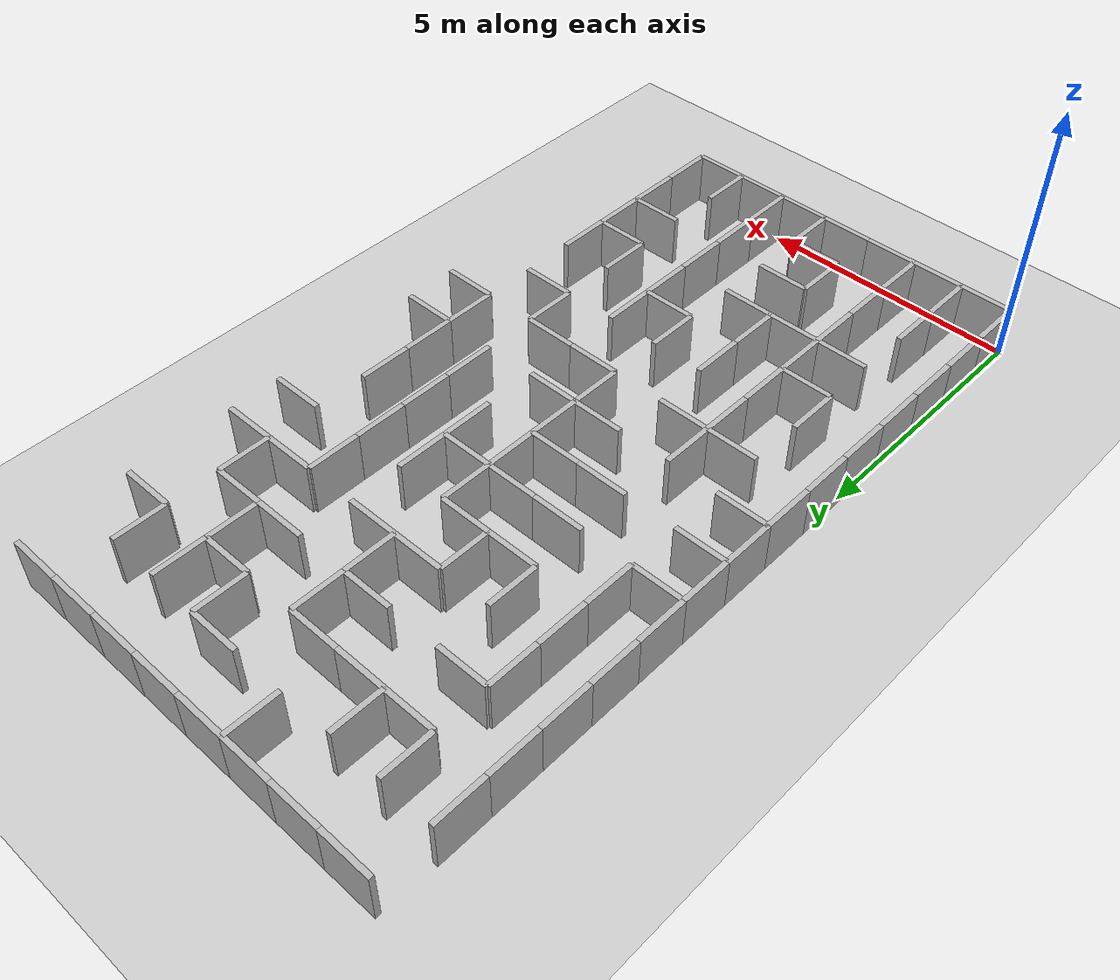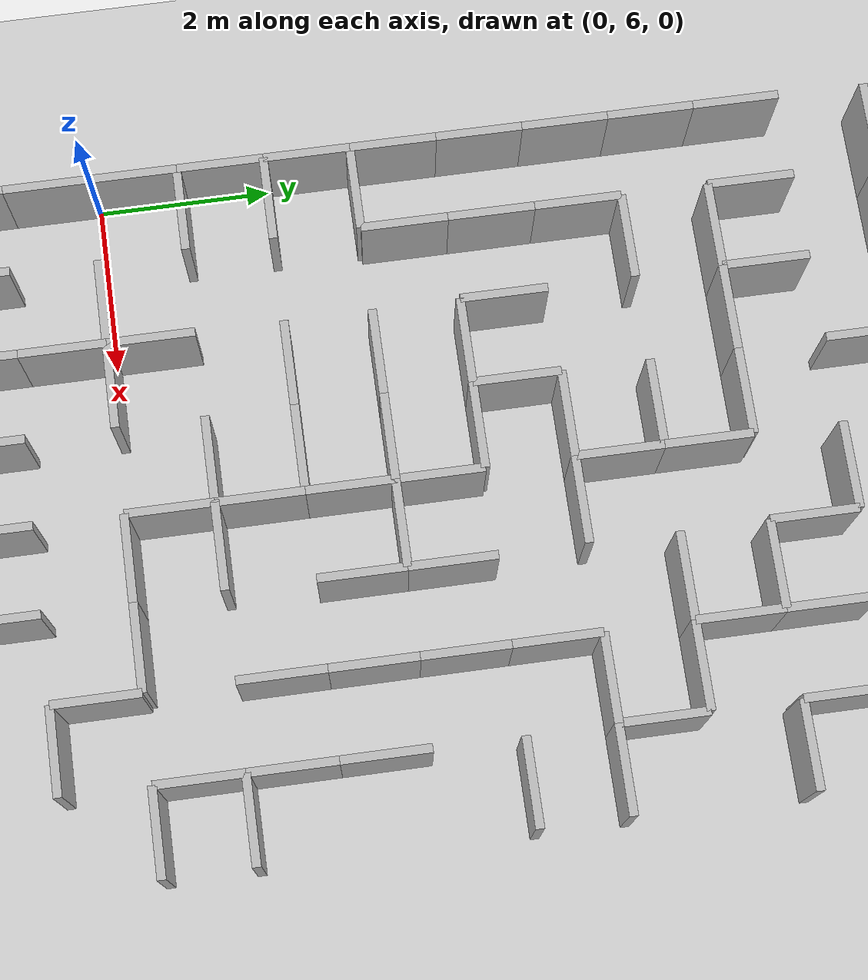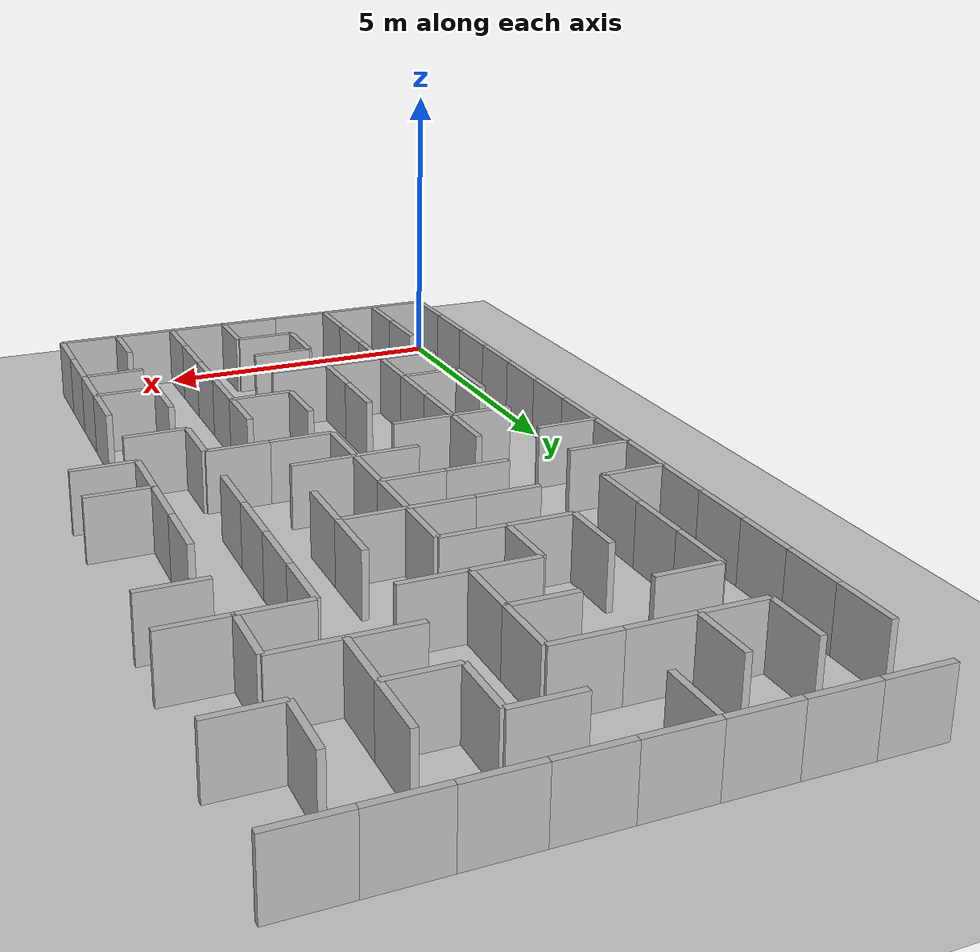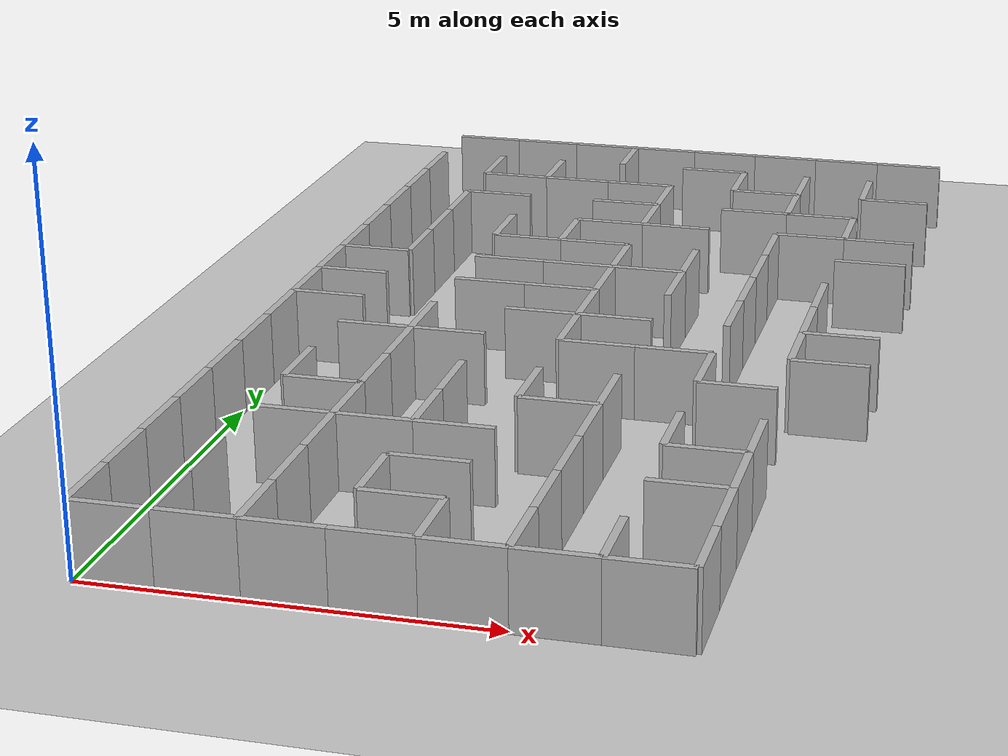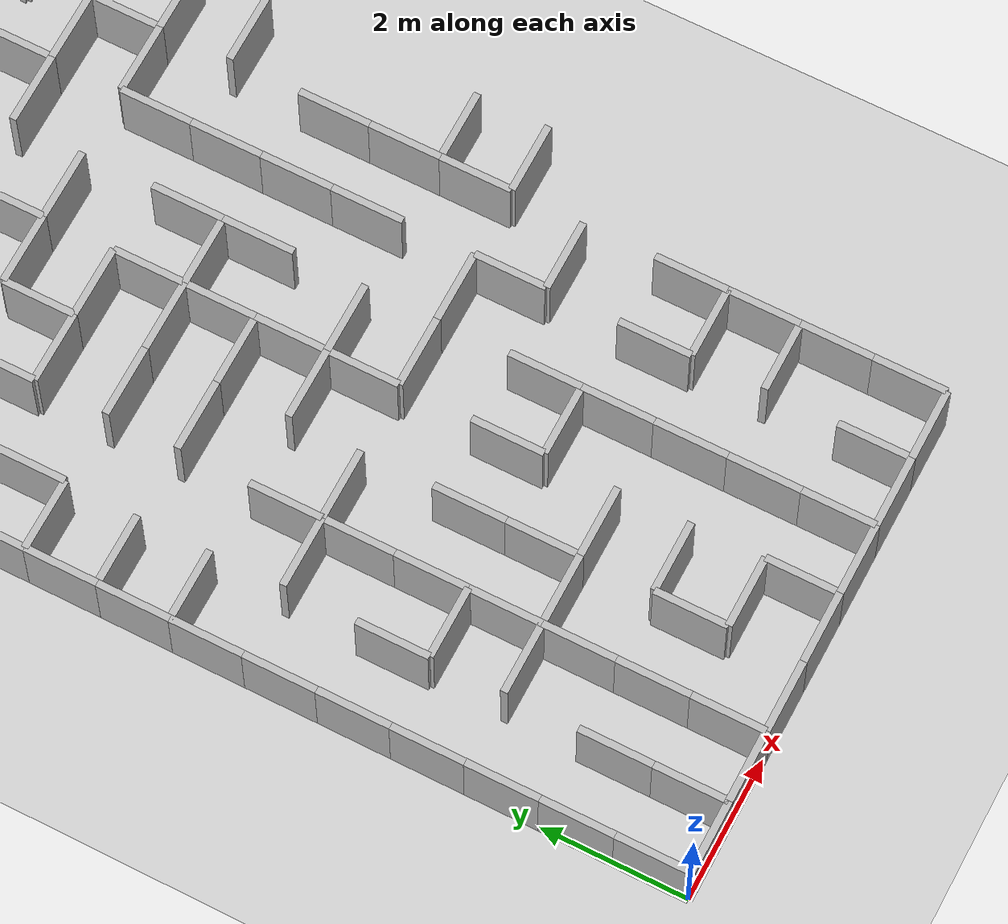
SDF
<sdf version="1.6">
 <world name="maze">
  <include><uri>model://ground_plane</uri></include>
  <model name="wall_r0_c0_N_b">
   <static>true</static>
   <pose>0.5 15.0 0.5 0 0 0</pose>
   <link name="link">
    <collision name="collision"><geometry><box><size>1.0 0.1 1.0</size></box></geometry></collision>
    <visual name="visual"><geometry><box><size>1.0 0.1 1.0</size></box></geometry></visual>
   </link>
  </model>
  <model name="wall_r0_c1_N_b">
   <static>true</static>
   <pose>1.5 15.0 0.5 0 0 0</pose>
   <link name="link">
    <collision name="collision"><geometry><box><size>1.0 0.1 1.0</size></box></geometry></collision>
    <visual name="visual"><geometry><box><size>1.0 0.1 1.0</size></box></geometry></visual>
   </link>
  </model>
  <model name="wall_r0_c2_N_b">
   <static>true</static>
   <pose>2.5 15.0 0.5 0 0 0</pose>
   <link name="link">
    <collision name="collision"><geometry><box><size>1.0 0.1 1.0</size></box></geometry></collision>
    <visual name="visual"><geometry><box><size>1.0 0.1 1.0</size></box></geometry></visual>
   </link>
  </model>
  <model name="wall_r0_c3_N_b">
   <static>true</static>
   <pose>3.5 15.0 0.5 0 0 0</pose>
   <link name="link">
    <collision name="collision"><geometry><box><size>1.0 0.1 1.0</size></box></geometry></collision>
    <visual name="visual"><geometry><box><size>1.0 0.1 1.0</size></box></geometry></visual>
   </link>
  </model>
  <model name="wall_r0_c3_W">
   <static>true</static>
   <pose>3.0 14.5 0.5 0 0 0</pose>
   <link name="link">
    <collision name="collision"><geometry><box><size>0.1 1.0 1.0</size></box></geometry></collision>
    <visual name="visual"><geometry><box><size>0.1 1.0 1.0</size></box></geometry></visual>
   </link>
  </model>
  <model name="wall_r0_c4_N_b">
   <static>true</static>
   <pose>4.5 15.0 0.5 0 0 0</pose>
   <link name="link">
    <collision name="collision"><geometry><box><size>1.0 0.1 1.0</size></box></geometry></collision>
    <visual name="visual"><geometry><box><size>1.0 0.1 1.0</size></box></geometry></visual>
   </link>
  </model>
  <model name="wall_r0_c5_N_b">
   <static>true</static>
   <pose>5.5 15.0 0.5 0 0 0</pose>
   <link name="link">
    <collision name="collision"><geometry><box><size>1.0 0.1 1.0</size></box></geometry></collision>
    <visual name="visual"><geometry><box><size>1.0 0.1 1.0</size></box></geometry></visual>
   </link>
  </model>
  <model name="wall_r0_c6_N_b">
   <static>true</static>
   <pose>6.5 15.0 0.5 0 0 0</pose>
   <link name="link">
    <collision name="collision"><geometry><box><size>1.0 0.1 1.0</size></box></geometry></collision>
    <visual name="visual"><geometry><box><size>1.0 0.1 1.0</size></box></geometry></visual>
   </link>
  </model>
  <model name="wall_r0_c7_N_b">
   <static>true</static>
   <pose>7.5 15.0 0.5 0 0 0</pose>
   <link name="link">
    <collision name="collision"><geometry><box><size>1.0 0.1 1.0</size></box></geometry></collision>
    <visual name="visual"><geometry><box><size>1.0 0.1 1.0</size></box></geometry></visual>
   </link>
  </model>
  <model name="wall_r1_c0_W_b">
   <static>true</static>
   <pose>0.0 13.5 0.5 0 0 0</pose>
   <link name="link">
    <collision name="collision"><geometry><box><size>0.1 1.0 1.0</size></box></geometry></collision>
    <visual name="visual"><geometry><box><size>0.1 1.0 1.0</size></box></geometry></visual>
   </link>
  </model>
  <model name="wall_r1_c1_W">
   <static>true</static>
   <pose>1.0 13.5 0.5 0 0 0</pose>
   <link name="link">
    <collision name="collision"><geometry><box><size>0.1 1.0 1.0</size></box></geometry></collision>
    <visual name="visual"><geometry><box><size>0.1 1.0 1.0</size></box></geometry></visual>
   </link>
  </model>
  <model name="wall_r1_c2_W">
   <static>true</static>
   <pose>2.0 13.5 0.5 0 0 0</pose>
   <link name="link">
    <collision name="collision"><geometry><box><size>0.1 1.0 1.0</size></box></geometry></collision>
    <visual name="visual"><geometry><box><size>0.1 1.0 1.0</size></box></geometry></visual>
   </link>
  </model>
  <model name="wall_r1_c4_N">
   <static>true</static>
   <pose>4.5 14.0 0.5 0 0 0</pose>
   <link name="link">
    <collision name="collision"><geometry><box><size>1.0 0.1 1.0</size></box></geometry></collision>
    <visual name="visual"><geometry><box><size>1.0 0.1 1.0</size></box></geometry></visual>
   </link>
  </model>
  <model name="wall_r1_c5_W">
   <static>true</static>
   <pose>5.0 13.5 0.5 0 0 0</pose>
   <link name="link">
    <collision name="collision"><geometry><box><size>0.1 1.0 1.0</size></box></geometry></collision>
    <visual name="visual"><geometry><box><size>0.1 1.0 1.0</size></box></geometry></visual>
   </link>
  </model>
  <model name="wall_r1_c6_W">
   <static>true</static>
   <pose>6.0 13.5 0.5 0 0 0</pose>
   <link name="link">
    <collision name="collision"><geometry><box><size>0.1 1.0 1.0</size></box></geometry></collision>
    <visual name="visual"><geometry><box><size>0.1 1.0 1.0</size></box></geometry></visual>
   </link>
  </model>
  <model name="wall_r1_c7_W">
   <static>true</static>
   <pose>7.0 13.5 0.5 0 0 0</pose>
   <link name="link">
    <collision name="collision"><geometry><box><size>0.1 1.0 1.0</size></box></geometry></collision>
    <visual name="visual"><geometry><box><size>0.1 1.0 1.0</size></box></geometry></visual>
   </link>
  </model>
  <model name="wall_r2_c0_W_b">
   <static>true</static>
   <pose>0.0 12.5 0.5 0 0 0</pose>
   <link name="link">
    <collision name="collision"><geometry><box><size>0.1 1.0 1.0</size></box></geometry></collision>
    <visual name="visual"><geometry><box><size>0.1 1.0 1.0</size></box></geometry></visual>
   </link>
  </model>
  <model name="wall_r2_c1_N">
   <static>true</static>
   <pose>1.5 13.0 0.5 0 0 0</pose>
   <link name="link">
    <collision name="collision"><geometry><box><size>1.0 0.1 1.0</size></box></geometry></collision>
    <visual name="visual"><geometry><box><size>1.0 0.1 1.0</size></box></geometry></visual>
   </link>
  </model>
  <model name="wall_r2_c2_N">
   <static>true</static>
   <pose>2.5 13.0 0.5 0 0 0</pose>
   <link name="link">
    <collision name="collision"><geometry><box><size>1.0 0.1 1.0</size></box></geometry></collision>
    <visual name="visual"><geometry><box><size>1.0 0.1 1.0</size></box></geometry></visual>
   </link>
  </model>
  <model name="wall_r2_c3_N">
   <static>true</static>
   <pose>3.5 13.0 0.5 0 0 0</pose>
   <link name="link">
    <collision name="collision"><geometry><box><size>1.0 0.1 1.0</size></box></geometry></collision>
    <visual name="visual"><geometry><box><size>1.0 0.1 1.0</size></box></geometry></visual>
   </link>
  </model>
  <model name="wall_r2_c4_W">
   <static>true</static>
   <pose>4.0 12.5 0.5 0 0 0</pose>
   <link name="link">
    <collision name="collision"><geometry><box><size>0.1 1.0 1.0</size></box></geometry></collision>
    <visual name="visual"><geometry><box><size>0.1 1.0 1.0</size></box></geometry></visual>
   </link>
  </model>
  <model name="wall_r2_c5_N">
   <static>true</static>
   <pose>5.5 13.0 0.5 0 0 0</pose>
   <link name="link">
    <collision name="collision"><geometry><box><size>1.0 0.1 1.0</size></box></geometry></collision>
    <visual name="visual"><geometry><box><size>1.0 0.1 1.0</size></box></geometry></visual>
   </link>
  </model>
  <model name="wall_r2_c6_W">
   <static>true</static>
   <pose>6.0 12.5 0.5 0 0 0</pose>
   <link name="link">
    <collision name="collision"><geometry><box><size>0.1 1.0 1.0</size></box></geometry></collision>
    <visual name="visual"><geometry><box><size>0.1 1.0 1.0</size></box></geometry></visual>
   </link>
  </model>
  <model name="wall_r2_c7_N">
   <static>true</static>
   <pose>7.5 13.0 0.5 0 0 0</pose>
   <link name="link">
    <collision name="collision"><geometry><box><size>1.0 0.1 1.0</size></box></geometry></collision>
    <visual name="visual"><geometry><box><size>1.0 0.1 1.0</size></box></geometry></visual>
   </link>
  </model>
  <model name="wall_r3_c0_W_b">
   <static>true</static>
   <pose>0.0 11.5 0.5 0 0 0</pose>
   <link name="link">
    <collision name="collision"><geometry><box><size>0.1 1.0 1.0</size></box></geometry></collision>
    <visual name="visual"><geometry><box><size>0.1 1.0 1.0</size></box></geometry></visual>
   </link>
  </model>
  <model name="wall_r3_c1_N">
   <static>true</static>
   <pose>1.5 12.0 0.5 0 0 0</pose>
   <link name="link">
    <collision name="collision"><geometry><box><size>1.0 0.1 1.0</size></box></geometry></collision>
    <visual name="visual"><geometry><box><size>1.0 0.1 1.0</size></box></geometry></visual>
   </link>
  </model>
  <model name="wall_r3_c1_W">
   <static>true</static>
   <pose>1.0 11.5 0.5 0 0 0</pose>
   <link name="link">
    <collision name="collision"><geometry><box><size>0.1 1.0 1.0</size></box></geometry></collision>
    <visual name="visual"><geometry><box><size>0.1 1.0 1.0</size></box></geometry></visual>
   </link>
  </model>
  <model name="wall_r3_c3_N">
   <static>true</static>
   <pose>3.5 12.0 0.5 0 0 0</pose>
   <link name="link">
    <collision name="collision"><geometry><box><size>1.0 0.1 1.0</size></box></geometry></collision>
    <visual name="visual"><geometry><box><size>1.0 0.1 1.0</size></box></geometry></visual>
   </link>
  </model>
  <model name="wall_r3_c4_W">
   <static>true</static>
   <pose>4.0 11.5 0.5 0 0 0</pose>
   <link name="link">
    <collision name="collision"><geometry><box><size>0.1 1.0 1.0</size></box></geometry></collision>
    <visual name="visual"><geometry><box><size>0.1 1.0 1.0</size></box></geometry></visual>
   </link>
  </model>
  <model name="wall_r3_c5_N">
   <static>true</static>
   <pose>5.5 12.0 0.5 0 0 0</pose>
   <link name="link">
    <collision name="collision"><geometry><box><size>1.0 0.1 1.0</size></box></geometry></collision>
    <visual name="visual"><geometry><box><size>1.0 0.1 1.0</size></box></geometry></visual>
   </link>
  </model>
  <model name="wall_r3_c6_N">
   <static>true</static>
   <pose>6.5 12.0 0.5 0 0 0</pose>
   <link name="link">
    <collision name="collision"><geometry><box><size>1.0 0.1 1.0</size></box></geometry></collision>
    <visual name="visual"><geometry><box><size>1.0 0.1 1.0</size></box></geometry></visual>
   </link>
  </model>
  <model name="wall_r3_c7_W">
   <static>true</static>
   <pose>7.0 11.5 0.5 0 0 0</pose>
   <link name="link">
    <collision name="collision"><geometry><box><size>0.1 1.0 1.0</size></box></geometry></collision>
    <visual name="visual"><geometry><box><size>0.1 1.0 1.0</size></box></geometry></visual>
   </link>
  </model>
  <model name="wall_r4_c0_W_b">
   <static>true</static>
   <pose>0.0 10.5 0.5 0 0 0</pose>
   <link name="link">
    <collision name="collision"><geometry><box><size>0.1 1.0 1.0</size></box></geometry></collision>
    <visual name="visual"><geometry><box><size>0.1 1.0 1.0</size></box></geometry></visual>
   </link>
  </model>
  <model name="wall_r4_c1_W">
   <static>true</static>
   <pose>1.0 10.5 0.5 0 0 0</pose>
   <link name="link">
    <collision name="collision"><geometry><box><size>0.1 1.0 1.0</size></box></geometry></collision>
    <visual name="visual"><geometry><box><size>0.1 1.0 1.0</size></box></geometry></visual>
   </link>
  </model>
  <model name="wall_r4_c2_W">
   <static>true</static>
   <pose>2.0 10.5 0.5 0 0 0</pose>
   <link name="link">
    <collision name="collision"><geometry><box><size>0.1 1.0 1.0</size></box></geometry></collision>
    <visual name="visual"><geometry><box><size>0.1 1.0 1.0</size></box></geometry></visual>
   </link>
  </model>
  <model name="wall_r4_c3_N">
   <static>true</static>
   <pose>3.5 11.0 0.5 0 0 0</pose>
   <link name="link">
    <collision name="collision"><geometry><box><size>1.0 0.1 1.0</size></box></geometry></collision>
    <visual name="visual"><geometry><box><size>1.0 0.1 1.0</size></box></geometry></visual>
   </link>
  </model>
  <model name="wall_r4_c3_W">
   <static>true</static>
   <pose>3.0 10.5 0.5 0 0 0</pose>
   <link name="link">
    <collision name="collision"><geometry><box><size>0.1 1.0 1.0</size></box></geometry></collision>
    <visual name="visual"><geometry><box><size>0.1 1.0 1.0</size></box></geometry></visual>
   </link>
  </model>
  <model name="wall_r4_c4_N">
   <static>true</static>
   <pose>4.5 11.0 0.5 0 0 0</pose>
   <link name="link">
    <collision name="collision"><geometry><box><size>1.0 0.1 1.0</size></box></geometry></collision>
    <visual name="visual"><geometry><box><size>1.0 0.1 1.0</size></box></geometry></visual>
   </link>
  </model>
  <model name="wall_r4_c6_N">
   <static>true</static>
   <pose>6.5 11.0 0.5 0 0 0</pose>
   <link name="link">
    <collision name="collision"><geometry><box><size>1.0 0.1 1.0</size></box></geometry></collision>
    <visual name="visual"><geometry><box><size>1.0 0.1 1.0</size></box></geometry></visual>
   </link>
  </model>
  <model name="wall_r4_c6_W">
   <static>true</static>
   <pose>6.0 10.5 0.5 0 0 0</pose>
   <link name="link">
    <collision name="collision"><geometry><box><size>0.1 1.0 1.0</size></box></geometry></collision>
    <visual name="visual"><geometry><box><size>0.1 1.0 1.0</size></box></geometry></visual>
   </link>
  </model>
  <model name="wall_r4_c7_N">
   <static>true</static>
   <pose>7.5 11.0 0.5 0 0 0</pose>
   <link name="link">
    <collision name="collision"><geometry><box><size>1.0 0.1 1.0</size></box></geometry></collision>
    <visual name="visual"><geometry><box><size>1.0 0.1 1.0</size></box></geometry></visual>
   </link>
  </model>
  <model name="wall_r5_c0_W_b">
   <static>true</static>
   <pose>0.0 9.5 0.5 0 0 0</pose>
   <link name="link">
    <collision name="collision"><geometry><box><size>0.1 1.0 1.0</size></box></geometry></collision>
    <visual name="visual"><geometry><box><size>0.1 1.0 1.0</size></box></geometry></visual>
   </link>
  </model>
  <model name="wall_r5_c1_W">
   <static>true</static>
   <pose>1.0 9.5 0.5 0 0 0</pose>
   <link name="link">
    <collision name="collision"><geometry><box><size>0.1 1.0 1.0</size></box></geometry></collision>
    <visual name="visual"><geometry><box><size>0.1 1.0 1.0</size></box></geometry></visual>
   </link>
  </model>
  <model name="wall_r5_c2_N">
   <static>true</static>
   <pose>2.5 10.0 0.5 0 0 0</pose>
   <link name="link">
    <collision name="collision"><geometry><box><size>1.0 0.1 1.0</size></box></geometry></collision>
    <visual name="visual"><geometry><box><size>1.0 0.1 1.0</size></box></geometry></visual>
   </link>
  </model>
  <model name="wall_r5_c3_N">
   <static>true</static>
   <pose>3.5 10.0 0.5 0 0 0</pose>
   <link name="link">
    <collision name="collision"><geometry><box><size>1.0 0.1 1.0</size></box></geometry></collision>
    <visual name="visual"><geometry><box><size>1.0 0.1 1.0</size></box></geometry></visual>
   </link>
  </model>
  <model name="wall_r5_c4_W">
   <static>true</static>
   <pose>4.0 9.5 0.5 0 0 0</pose>
   <link name="link">
    <collision name="collision"><geometry><box><size>0.1 1.0 1.0</size></box></geometry></collision>
    <visual name="visual"><geometry><box><size>0.1 1.0 1.0</size></box></geometry></visual>
   </link>
  </model>
  <model name="wall_r5_c5_W">
   <static>true</static>
   <pose>5.0 9.5 0.5 0 0 0</pose>
   <link name="link">
    <collision name="collision"><geometry><box><size>0.1 1.0 1.0</size></box></geometry></collision>
    <visual name="visual"><geometry><box><size>0.1 1.0 1.0</size></box></geometry></visual>
   </link>
  </model>
  <model name="wall_r5_c6_W">
   <static>true</static>
   <pose>6.0 9.5 0.5 0 0 0</pose>
   <link name="link">
    <collision name="collision"><geometry><box><size>0.1 1.0 1.0</size></box></geometry></collision>
    <visual name="visual"><geometry><box><size>0.1 1.0 1.0</size></box></geometry></visual>
   </link>
  </model>
  <model name="wall_r5_c7_N">
   <static>true</static>
   <pose>7.5 10.0 0.5 0 0 0</pose>
   <link name="link">
    <collision name="collision"><geometry><box><size>1.0 0.1 1.0</size></box></geometry></collision>
    <visual name="visual"><geometry><box><size>1.0 0.1 1.0</size></box></geometry></visual>
   </link>
  </model>
  <model name="wall_r6_c0_N">
   <static>true</static>
   <pose>0.5 9.0 0.5 0 0 0</pose>
   <link name="link">
    <collision name="collision"><geometry><box><size>1.0 0.1 1.0</size></box></geometry></collision>
    <visual name="visual"><geometry><box><size>1.0 0.1 1.0</size></box></geometry></visual>
   </link>
  </model>
  <model name="wall_r6_c0_W_b">
   <static>true</static>
   <pose>0.0 8.5 0.5 0 0 0</pose>
   <link name="link">
    <collision name="collision"><geometry><box><size>0.1 1.0 1.0</size></box></geometry></collision>
    <visual name="visual"><geometry><box><size>0.1 1.0 1.0</size></box></geometry></visual>
   </link>
  </model>
  <model name="wall_r6_c2_N">
   <static>true</static>
   <pose>2.5 9.0 0.5 0 0 0</pose>
   <link name="link">
    <collision name="collision"><geometry><box><size>1.0 0.1 1.0</size></box></geometry></collision>
    <visual name="visual"><geometry><box><size>1.0 0.1 1.0</size></box></geometry></visual>
   </link>
  </model>
  <model name="wall_r6_c3_N">
   <static>true</static>
   <pose>3.5 9.0 0.5 0 0 0</pose>
   <link name="link">
    <collision name="collision"><geometry><box><size>1.0 0.1 1.0</size></box></geometry></collision>
    <visual name="visual"><geometry><box><size>1.0 0.1 1.0</size></box></geometry></visual>
   </link>
  </model>
  <model name="wall_r6_c4_N">
   <static>true</static>
   <pose>4.5 9.0 0.5 0 0 0</pose>
   <link name="link">
    <collision name="collision"><geometry><box><size>1.0 0.1 1.0</size></box></geometry></collision>
    <visual name="visual"><geometry><box><size>1.0 0.1 1.0</size></box></geometry></visual>
   </link>
  </model>
  <model name="wall_r6_c4_W">
   <static>true</static>
   <pose>4.0 8.5 0.5 0 0 0</pose>
   <link name="link">
    <collision name="collision"><geometry><box><size>0.1 1.0 1.0</size></box></geometry></collision>
    <visual name="visual"><geometry><box><size>0.1 1.0 1.0</size></box></geometry></visual>
   </link>
  </model>
  <model name="wall_r6_c5_W">
   <static>true</static>
   <pose>5.0 8.5 0.5 0 0 0</pose>
   <link name="link">
    <collision name="collision"><geometry><box><size>0.1 1.0 1.0</size></box></geometry></collision>
    <visual name="visual"><geometry><box><size>0.1 1.0 1.0</size></box></geometry></visual>
   </link>
  </model>
  <model name="wall_r6_c6_W">
   <static>true</static>
   <pose>6.0 8.5 0.5 0 0 0</pose>
   <link name="link">
    <collision name="collision"><geometry><box><size>0.1 1.0 1.0</size></box></geometry></collision>
    <visual name="visual"><geometry><box><size>0.1 1.0 1.0</size></box></geometry></visual>
   </link>
  </model>
  <model name="wall_r6_c7_W">
   <static>true</static>
   <pose>7.0 8.5 0.5 0 0 0</pose>
   <link name="link">
    <collision name="collision"><geometry><box><size>0.1 1.0 1.0</size></box></geometry></collision>
    <visual name="visual"><geometry><box><size>0.1 1.0 1.0</size></box></geometry></visual>
   </link>
  </model>
  <model name="wall_r7_c0_N">
   <static>true</static>
   <pose>0.5 8.0 0.5 0 0 0</pose>
   <link name="link">
    <collision name="collision"><geometry><box><size>1.0 0.1 1.0</size></box></geometry></collision>
    <visual name="visual"><geometry><box><size>1.0 0.1 1.0</size></box></geometry></visual>
   </link>
  </model>
  <model name="wall_r7_c0_W_b">
   <static>true</static>
   <pose>0.0 7.5 0.5 0 0 0</pose>
   <link name="link">
    <collision name="collision"><geometry><box><size>0.1 1.0 1.0</size></box></geometry></collision>
    <visual name="visual"><geometry><box><size>0.1 1.0 1.0</size></box></geometry></visual>
   </link>
  </model>
  <model name="wall_r7_c2_N">
   <static>true</static>
   <pose>2.5 8.0 0.5 0 0 0</pose>
   <link name="link">
    <collision name="collision"><geometry><box><size>1.0 0.1 1.0</size></box></geometry></collision>
    <visual name="visual"><geometry><box><size>1.0 0.1 1.0</size></box></geometry></visual>
   </link>
  </model>
  <model name="wall_r7_c3_N">
   <static>true</static>
   <pose>3.5 8.0 0.5 0 0 0</pose>
   <link name="link">
    <collision name="collision"><geometry><box><size>1.0 0.1 1.0</size></box></geometry></collision>
    <visual name="visual"><geometry><box><size>1.0 0.1 1.0</size></box></geometry></visual>
   </link>
  </model>
  <model name="wall_r7_c4_W">
   <static>true</static>
   <pose>4.0 7.5 0.5 0 0 0</pose>
   <link name="link">
    <collision name="collision"><geometry><box><size>0.1 1.0 1.0</size></box></geometry></collision>
    <visual name="visual"><geometry><box><size>0.1 1.0 1.0</size></box></geometry></visual>
   </link>
  </model>
  <model name="wall_r7_c6_W">
   <static>true</static>
   <pose>6.0 7.5 0.5 0 0 0</pose>
   <link name="link">
    <collision name="collision"><geometry><box><size>0.1 1.0 1.0</size></box></geometry></collision>
    <visual name="visual"><geometry><box><size>0.1 1.0 1.0</size></box></geometry></visual>
   </link>
  </model>
  <model name="wall_r7_c7_W">
   <static>true</static>
   <pose>7.0 7.5 0.5 0 0 0</pose>
   <link name="link">
    <collision name="collision"><geometry><box><size>0.1 1.0 1.0</size></box></geometry></collision>
    <visual name="visual"><geometry><box><size>0.1 1.0 1.0</size></box></geometry></visual>
   </link>
  </model>
  <model name="wall_r8_c0_N">
   <static>true</static>
   <pose>0.5 7.0 0.5 0 0 0</pose>
   <link name="link">
    <collision name="collision"><geometry><box><size>1.0 0.1 1.0</size></box></geometry></collision>
    <visual name="visual"><geometry><box><size>1.0 0.1 1.0</size></box></geometry></visual>
   </link>
  </model>
  <model name="wall_r8_c0_W_b">
   <static>true</static>
   <pose>0.0 6.5 0.5 0 0 0</pose>
   <link name="link">
    <collision name="collision"><geometry><box><size>0.1 1.0 1.0</size></box></geometry></collision>
    <visual name="visual"><geometry><box><size>0.1 1.0 1.0</size></box></geometry></visual>
   </link>
  </model>
  <model name="wall_r8_c2_W">
   <static>true</static>
   <pose>2.0 6.5 0.5 0 0 0</pose>
   <link name="link">
    <collision name="collision"><geometry><box><size>0.1 1.0 1.0</size></box></geometry></collision>
    <visual name="visual"><geometry><box><size>0.1 1.0 1.0</size></box></geometry></visual>
   </link>
  </model>
  <model name="wall_r8_c3_N">
   <static>true</static>
   <pose>3.5 7.0 0.5 0 0 0</pose>
   <link name="link">
    <collision name="collision"><geometry><box><size>1.0 0.1 1.0</size></box></geometry></collision>
    <visual name="visual"><geometry><box><size>1.0 0.1 1.0</size></box></geometry></visual>
   </link>
  </model>
  <model name="wall_r8_c4_N">
   <static>true</static>
   <pose>4.5 7.0 0.5 0 0 0</pose>
   <link name="link">
    <collision name="collision"><geometry><box><size>1.0 0.1 1.0</size></box></geometry></collision>
    <visual name="visual"><geometry><box><size>1.0 0.1 1.0</size></box></geometry></visual>
   </link>
  </model>
  <model name="wall_r8_c4_W">
   <static>true</static>
   <pose>4.0 6.5 0.5 0 0 0</pose>
   <link name="link">
    <collision name="collision"><geometry><box><size>0.1 1.0 1.0</size></box></geometry></collision>
    <visual name="visual"><geometry><box><size>0.1 1.0 1.0</size></box></geometry></visual>
   </link>
  </model>
  <model name="wall_r8_c7_N">
   <static>true</static>
   <pose>7.5 7.0 0.5 0 0 0</pose>
   <link name="link">
    <collision name="collision"><geometry><box><size>1.0 0.1 1.0</size></box></geometry></collision>
    <visual name="visual"><geometry><box><size>1.0 0.1 1.0</size></box></geometry></visual>
   </link>
  </model>
  <model name="wall_r8_c7_W">
   <static>true</static>
   <pose>7.0 6.5 0.5 0 0 0</pose>
   <link name="link">
    <collision name="collision"><geometry><box><size>0.1 1.0 1.0</size></box></geometry></collision>
    <visual name="visual"><geometry><box><size>0.1 1.0 1.0</size></box></geometry></visual>
   </link>
  </model>
  <model name="wall_r9_c0_W_b">
   <static>true</static>
   <pose>0.0 5.5 0.5 0 0 0</pose>
   <link name="link">
    <collision name="collision"><geometry><box><size>0.1 1.0 1.0</size></box></geometry></collision>
    <visual name="visual"><geometry><box><size>0.1 1.0 1.0</size></box></geometry></visual>
   </link>
  </model>
  <model name="wall_r9_c1_N">
   <static>true</static>
   <pose>1.5 6.0 0.5 0 0 0</pose>
   <link name="link">
    <collision name="collision"><geometry><box><size>1.0 0.1 1.0</size></box></geometry></collision>
    <visual name="visual"><geometry><box><size>1.0 0.1 1.0</size></box></geometry></visual>
   </link>
  </model>
  <model name="wall_r9_c2_N">
   <static>true</static>
   <pose>2.5 6.0 0.5 0 0 0</pose>
   <link name="link">
    <collision name="collision"><geometry><box><size>1.0 0.1 1.0</size></box></geometry></collision>
    <visual name="visual"><geometry><box><size>1.0 0.1 1.0</size></box></geometry></visual>
   </link>
  </model>
  <model name="wall_r9_c2_W">
   <static>true</static>
   <pose>2.0 5.5 0.5 0 0 0</pose>
   <link name="link">
    <collision name="collision"><geometry><box><size>0.1 1.0 1.0</size></box></geometry></collision>
    <visual name="visual"><geometry><box><size>0.1 1.0 1.0</size></box></geometry></visual>
   </link>
  </model>
  <model name="wall_r9_c4_N">
   <static>true</static>
   <pose>4.5 6.0 0.5 0 0 0</pose>
   <link name="link">
    <collision name="collision"><geometry><box><size>1.0 0.1 1.0</size></box></geometry></collision>
    <visual name="visual"><geometry><box><size>1.0 0.1 1.0</size></box></geometry></visual>
   </link>
  </model>
  <model name="wall_r9_c5_N">
   <static>true</static>
   <pose>5.5 6.0 0.5 0 0 0</pose>
   <link name="link">
    <collision name="collision"><geometry><box><size>1.0 0.1 1.0</size></box></geometry></collision>
    <visual name="visual"><geometry><box><size>1.0 0.1 1.0</size></box></geometry></visual>
   </link>
  </model>
  <model name="wall_r9_c6_W">
   <static>true</static>
   <pose>6.0 5.5 0.5 0 0 0</pose>
   <link name="link">
    <collision name="collision"><geometry><box><size>0.1 1.0 1.0</size></box></geometry></collision>
    <visual name="visual"><geometry><box><size>0.1 1.0 1.0</size></box></geometry></visual>
   </link>
  </model>
  <model name="wall_r9_c7_N">
   <static>true</static>
   <pose>7.5 6.0 0.5 0 0 0</pose>
   <link name="link">
    <collision name="collision"><geometry><box><size>1.0 0.1 1.0</size></box></geometry></collision>
    <visual name="visual"><geometry><box><size>1.0 0.1 1.0</size></box></geometry></visual>
   </link>
  </model>
  <model name="wall_r10_c0_W_b">
   <static>true</static>
   <pose>0.0 4.5 0.5 0 0 0</pose>
   <link name="link">
    <collision name="collision"><geometry><box><size>0.1 1.0 1.0</size></box></geometry></collision>
    <visual name="visual"><geometry><box><size>0.1 1.0 1.0</size></box></geometry></visual>
   </link>
  </model>
  <model name="wall_r10_c1_W">
   <static>true</static>
   <pose>1.0 4.5 0.5 0 0 0</pose>
   <link name="link">
    <collision name="collision"><geometry><box><size>0.1 1.0 1.0</size></box></geometry></collision>
    <visual name="visual"><geometry><box><size>0.1 1.0 1.0</size></box></geometry></visual>
   </link>
  </model>
  <model name="wall_r10_c2_W">
   <static>true</static>
   <pose>2.0 4.5 0.5 0 0 0</pose>
   <link name="link">
    <collision name="collision"><geometry><box><size>0.1 1.0 1.0</size></box></geometry></collision>
    <visual name="visual"><geometry><box><size>0.1 1.0 1.0</size></box></geometry></visual>
   </link>
  </model>
  <model name="wall_r10_c3_W">
   <static>true</static>
   <pose>3.0 4.5 0.5 0 0 0</pose>
   <link name="link">
    <collision name="collision"><geometry><box><size>0.1 1.0 1.0</size></box></geometry></collision>
    <visual name="visual"><geometry><box><size>0.1 1.0 1.0</size></box></geometry></visual>
   </link>
  </model>
  <model name="wall_r10_c4_W">
   <static>true</static>
   <pose>4.0 4.5 0.5 0 0 0</pose>
   <link name="link">
    <collision name="collision"><geometry><box><size>0.1 1.0 1.0</size></box></geometry></collision>
    <visual name="visual"><geometry><box><size>0.1 1.0 1.0</size></box></geometry></visual>
   </link>
  </model>
  <model name="wall_r10_c5_W">
   <static>true</static>
   <pose>5.0 4.5 0.5 0 0 0</pose>
   <link name="link">
    <collision name="collision"><geometry><box><size>0.1 1.0 1.0</size></box></geometry></collision>
    <visual name="visual"><geometry><box><size>0.1 1.0 1.0</size></box></geometry></visual>
   </link>
  </model>
  <model name="wall_r10_c6_N">
   <static>true</static>
   <pose>6.5 5.0 0.5 0 0 0</pose>
   <link name="link">
    <collision name="collision"><geometry><box><size>1.0 0.1 1.0</size></box></geometry></collision>
    <visual name="visual"><geometry><box><size>1.0 0.1 1.0</size></box></geometry></visual>
   </link>
  </model>
  <model name="wall_r11_c0_W_b">
   <static>true</static>
   <pose>0.0 3.5 0.5 0 0 0</pose>
   <link name="link">
    <collision name="collision"><geometry><box><size>0.1 1.0 1.0</size></box></geometry></collision>
    <visual name="visual"><geometry><box><size>0.1 1.0 1.0</size></box></geometry></visual>
   </link>
  </model>
  <model name="wall_r11_c1_N">
   <static>true</static>
   <pose>1.5 4.0 0.5 0 0 0</pose>
   <link name="link">
    <collision name="collision"><geometry><box><size>1.0 0.1 1.0</size></box></geometry></collision>
    <visual name="visual"><geometry><box><size>1.0 0.1 1.0</size></box></geometry></visual>
   </link>
  </model>
  <model name="wall_r11_c2_W">
   <static>true</static>
   <pose>2.0 3.5 0.5 0 0 0</pose>
   <link name="link">
    <collision name="collision"><geometry><box><size>0.1 1.0 1.0</size></box></geometry></collision>
    <visual name="visual"><geometry><box><size>0.1 1.0 1.0</size></box></geometry></visual>
   </link>
  </model>
  <model name="wall_r11_c3_W">
   <static>true</static>
   <pose>3.0 3.5 0.5 0 0 0</pose>
   <link name="link">
    <collision name="collision"><geometry><box><size>0.1 1.0 1.0</size></box></geometry></collision>
    <visual name="visual"><geometry><box><size>0.1 1.0 1.0</size></box></geometry></visual>
   </link>
  </model>
  <model name="wall_r11_c4_N">
   <static>true</static>
   <pose>4.5 4.0 0.5 0 0 0</pose>
   <link name="link">
    <collision name="collision"><geometry><box><size>1.0 0.1 1.0</size></box></geometry></collision>
    <visual name="visual"><geometry><box><size>1.0 0.1 1.0</size></box></geometry></visual>
   </link>
  </model>
  <model name="wall_r11_c5_W">
   <static>true</static>
   <pose>5.0 3.5 0.5 0 0 0</pose>
   <link name="link">
    <collision name="collision"><geometry><box><size>0.1 1.0 1.0</size></box></geometry></collision>
    <visual name="visual"><geometry><box><size>0.1 1.0 1.0</size></box></geometry></visual>
   </link>
  </model>
  <model name="wall_r11_c6_W">
   <static>true</static>
   <pose>6.0 3.5 0.5 0 0 0</pose>
   <link name="link">
    <collision name="collision"><geometry><box><size>0.1 1.0 1.0</size></box></geometry></collision>
    <visual name="visual"><geometry><box><size>0.1 1.0 1.0</size></box></geometry></visual>
   </link>
  </model>
  <model name="wall_r11_c7_W">
   <static>true</static>
   <pose>7.0 3.5 0.5 0 0 0</pose>
   <link name="link">
    <collision name="collision"><geometry><box><size>0.1 1.0 1.0</size></box></geometry></collision>
    <visual name="visual"><geometry><box><size>0.1 1.0 1.0</size></box></geometry></visual>
   </link>
  </model>
  <model name="wall_r12_c0_W_b">
   <static>true</static>
   <pose>0.0 2.5 0.5 0 0 0</pose>
   <link name="link">
    <collision name="collision"><geometry><box><size>0.1 1.0 1.0</size></box></geometry></collision>
    <visual name="visual"><geometry><box><size>0.1 1.0 1.0</size></box></geometry></visual>
   </link>
  </model>
  <model name="wall_r12_c1_N">
   <static>true</static>
   <pose>1.5 3.0 0.5 0 0 0</pose>
   <link name="link">
    <collision name="collision"><geometry><box><size>1.0 0.1 1.0</size></box></geometry></collision>
    <visual name="visual"><geometry><box><size>1.0 0.1 1.0</size></box></geometry></visual>
   </link>
  </model>
  <model name="wall_r12_c2_N">
   <static>true</static>
   <pose>2.5 3.0 0.5 0 0 0</pose>
   <link name="link">
    <collision name="collision"><geometry><box><size>1.0 0.1 1.0</size></box></geometry></collision>
    <visual name="visual"><geometry><box><size>1.0 0.1 1.0</size></box></geometry></visual>
   </link>
  </model>
  <model name="wall_r12_c2_W">
   <static>true</static>
   <pose>2.0 2.5 0.5 0 0 0</pose>
   <link name="link">
    <collision name="collision"><geometry><box><size>0.1 1.0 1.0</size></box></geometry></collision>
    <visual name="visual"><geometry><box><size>0.1 1.0 1.0</size></box></geometry></visual>
   </link>
  </model>
  <model name="wall_r12_c3_N">
   <static>true</static>
   <pose>3.5 3.0 0.5 0 0 0</pose>
   <link name="link">
    <collision name="collision"><geometry><box><size>1.0 0.1 1.0</size></box></geometry></collision>
    <visual name="visual"><geometry><box><size>1.0 0.1 1.0</size></box></geometry></visual>
   </link>
  </model>
  <model name="wall_r12_c5_W">
   <static>true</static>
   <pose>5.0 2.5 0.5 0 0 0</pose>
   <link name="link">
    <collision name="collision"><geometry><box><size>0.1 1.0 1.0</size></box></geometry></collision>
    <visual name="visual"><geometry><box><size>0.1 1.0 1.0</size></box></geometry></visual>
   </link>
  </model>
  <model name="wall_r12_c6_N">
   <static>true</static>
   <pose>6.5 3.0 0.5 0 0 0</pose>
   <link name="link">
    <collision name="collision"><geometry><box><size>1.0 0.1 1.0</size></box></geometry></collision>
    <visual name="visual"><geometry><box><size>1.0 0.1 1.0</size></box></geometry></visual>
   </link>
  </model>
  <model name="wall_r12_c7_W">
   <static>true</static>
   <pose>7.0 2.5 0.5 0 0 0</pose>
   <link name="link">
    <collision name="collision"><geometry><box><size>0.1 1.0 1.0</size></box></geometry></collision>
    <visual name="visual"><geometry><box><size>0.1 1.0 1.0</size></box></geometry></visual>
   </link>
  </model>
  <model name="wall_r13_c0_W_b">
   <static>true</static>
   <pose>0.0 1.5 0.5 0 0 0</pose>
   <link name="link">
    <collision name="collision"><geometry><box><size>0.1 1.0 1.0</size></box></geometry></collision>
    <visual name="visual"><geometry><box><size>0.1 1.0 1.0</size></box></geometry></visual>
   </link>
  </model>
  <model name="wall_r13_c1_W">
   <static>true</static>
   <pose>1.0 1.5 0.5 0 0 0</pose>
   <link name="link">
    <collision name="collision"><geometry><box><size>0.1 1.0 1.0</size></box></geometry></collision>
    <visual name="visual"><geometry><box><size>0.1 1.0 1.0</size></box></geometry></visual>
   </link>
  </model>
  <model name="wall_r13_c2_W">
   <static>true</static>
   <pose>2.0 1.5 0.5 0 0 0</pose>
   <link name="link">
    <collision name="collision"><geometry><box><size>0.1 1.0 1.0</size></box></geometry></collision>
    <visual name="visual"><geometry><box><size>0.1 1.0 1.0</size></box></geometry></visual>
   </link>
  </model>
  <model name="wall_r13_c3_N">
   <static>true</static>
   <pose>3.5 2.0 0.5 0 0 0</pose>
   <link name="link">
    <collision name="collision"><geometry><box><size>1.0 0.1 1.0</size></box></geometry></collision>
    <visual name="visual"><geometry><box><size>1.0 0.1 1.0</size></box></geometry></visual>
   </link>
  </model>
  <model name="wall_r13_c3_W">
   <static>true</static>
   <pose>3.0 1.5 0.5 0 0 0</pose>
   <link name="link">
    <collision name="collision"><geometry><box><size>0.1 1.0 1.0</size></box></geometry></collision>
    <visual name="visual"><geometry><box><size>0.1 1.0 1.0</size></box></geometry></visual>
   </link>
  </model>
  <model name="wall_r13_c5_W">
   <static>true</static>
   <pose>5.0 1.5 0.5 0 0 0</pose>
   <link name="link">
    <collision name="collision"><geometry><box><size>0.1 1.0 1.0</size></box></geometry></collision>
    <visual name="visual"><geometry><box><size>0.1 1.0 1.0</size></box></geometry></visual>
   </link>
  </model>
  <model name="wall_r13_c6_N">
   <static>true</static>
   <pose>6.5 2.0 0.5 0 0 0</pose>
   <link name="link">
    <collision name="collision"><geometry><box><size>1.0 0.1 1.0</size></box></geometry></collision>
    <visual name="visual"><geometry><box><size>1.0 0.1 1.0</size></box></geometry></visual>
   </link>
  </model>
  <model name="wall_r13_c7_W">
   <static>true</static>
   <pose>7.0 1.5 0.5 0 0 0</pose>
   <link name="link">
    <collision name="collision"><geometry><box><size>0.1 1.0 1.0</size></box></geometry></collision>
    <visual name="visual"><geometry><box><size>0.1 1.0 1.0</size></box></geometry></visual>
   </link>
  </model>
  <model name="wall_r14_c0_W_b">
   <static>true</static>
   <pose>0.0 0.5 0.5 0 0 0</pose>
   <link name="link">
    <collision name="collision"><geometry><box><size>0.1 1.0 1.0</size></box></geometry></collision>
    <visual name="visual"><geometry><box><size>0.1 1.0 1.0</size></box></geometry></visual>
   </link>
  </model>
  <model name="wall_r14_c0_S_b">
   <static>true</static>
   <pose>0.5 0.0 0.5 0 0 0</pose>
   <link name="link">
    <collision name="collision"><geometry><box><size>1.0 0.1 1.0</size></box></geometry></collision>
    <visual name="visual"><geometry><box><size>1.0 0.1 1.0</size></box></geometry></visual>
   </link>
  </model>
  <model name="wall_r14_c1_W">
   <static>true</static>
   <pose>1.0 0.5 0.5 0 0 0</pose>
   <link name="link">
    <collision name="collision"><geometry><box><size>0.1 1.0 1.0</size></box></geometry></collision>
    <visual name="visual"><geometry><box><size>0.1 1.0 1.0</size></box></geometry></visual>
   </link>
  </model>
  <model name="wall_r14_c1_S_b">
   <static>true</static>
   <pose>1.5 0.0 0.5 0 0 0</pose>
   <link name="link">
    <collision name="collision"><geometry><box><size>1.0 0.1 1.0</size></box></geometry></collision>
    <visual name="visual"><geometry><box><size>1.0 0.1 1.0</size></box></geometry></visual>
   </link>
  </model>
  <model name="wall_r14_c2_W">
   <static>true</static>
   <pose>2.0 0.5 0.5 0 0 0</pose>
   <link name="link">
    <collision name="collision"><geometry><box><size>0.1 1.0 1.0</size></box></geometry></collision>
    <visual name="visual"><geometry><box><size>0.1 1.0 1.0</size></box></geometry></visual>
   </link>
  </model>
  <model name="wall_r14_c2_S_b">
   <static>true</static>
   <pose>2.5 0.0 0.5 0 0 0</pose>
   <link name="link">
    <collision name="collision"><geometry><box><size>1.0 0.1 1.0</size></box></geometry></collision>
    <visual name="visual"><geometry><box><size>1.0 0.1 1.0</size></box></geometry></visual>
   </link>
  </model>
  <model name="wall_r14_c3_N">
   <static>true</static>
   <pose>3.5 1.0 0.5 0 0 0</pose>
   <link name="link">
    <collision name="collision"><geometry><box><size>1.0 0.1 1.0</size></box></geometry></collision>
    <visual name="visual"><geometry><box><size>1.0 0.1 1.0</size></box></geometry></visual>
   </link>
  </model>
  <model name="wall_r14_c3_S_b">
   <static>true</static>
   <pose>3.5 0.0 0.5 0 0 0</pose>
   <link name="link">
    <collision name="collision"><geometry><box><size>1.0 0.1 1.0</size></box></geometry></collision>
    <visual name="visual"><geometry><box><size>1.0 0.1 1.0</size></box></geometry></visual>
   </link>
  </model>
  <model name="wall_r14_c4_W">
   <static>true</static>
   <pose>4.0 0.5 0.5 0 0 0</pose>
   <link name="link">
    <collision name="collision"><geometry><box><size>0.1 1.0 1.0</size></box></geometry></collision>
    <visual name="visual"><geometry><box><size>0.1 1.0 1.0</size></box></geometry></visual>
   </link>
  </model>
  <model name="wall_r14_c4_S_b">
   <static>true</static>
   <pose>4.5 0.0 0.5 0 0 0</pose>
   <link name="link">
    <collision name="collision"><geometry><box><size>1.0 0.1 1.0</size></box></geometry></collision>
    <visual name="visual"><geometry><box><size>1.0 0.1 1.0</size></box></geometry></visual>
   </link>
  </model>
  <model name="wall_r14_c5_W">
   <static>true</static>
   <pose>5.0 0.5 0.5 0 0 0</pose>
   <link name="link">
    <collision name="collision"><geometry><box><size>0.1 1.0 1.0</size></box></geometry></collision>
    <visual name="visual"><geometry><box><size>0.1 1.0 1.0</size></box></geometry></visual>
   </link>
  </model>
  <model name="wall_r14_c5_S_b">
   <static>true</static>
   <pose>5.5 0.0 0.5 0 0 0</pose>
   <link name="link">
    <collision name="collision"><geometry><box><size>1.0 0.1 1.0</size></box></geometry></collision>
    <visual name="visual"><geometry><box><size>1.0 0.1 1.0</size></box></geometry></visual>
   </link>
  </model>
  <model name="wall_r14_c6_W">
   <static>true</static>
   <pose>6.0 0.5 0.5 0 0 0</pose>
   <link name="link">
    <collision name="collision"><geometry><box><size>0.1 1.0 1.0</size></box></geometry></collision>
    <visual name="visual"><geometry><box><size>0.1 1.0 1.0</size></box></geometry></visual>
   </link>
  </model>
  <model name="wall_r14_c6_S_b">
   <static>true</static>
   <pose>6.5 0.0 0.5 0 0 0</pose>
   <link name="link">
    <collision name="collision"><geometry><box><size>1.0 0.1 1.0</size></box></geometry></collision>
    <visual name="visual"><geometry><box><size>1.0 0.1 1.0</size></box></geometry></visual>
   </link>
  </model>
  <model name="wall_r14_c7_W">
   <static>true</static>
   <pose>7.0 0.5 0.5 0 0 0</pose>
   <link name="link">
    <collision name="collision"><geometry><box><size>0.1 1.0 1.0</size></box></geometry></collision>
    <visual name="visual"><geometry><box><size>0.1 1.0 1.0</size></box></geometry></visual>
   </link>
  </model>
 </world>
</sdf>
